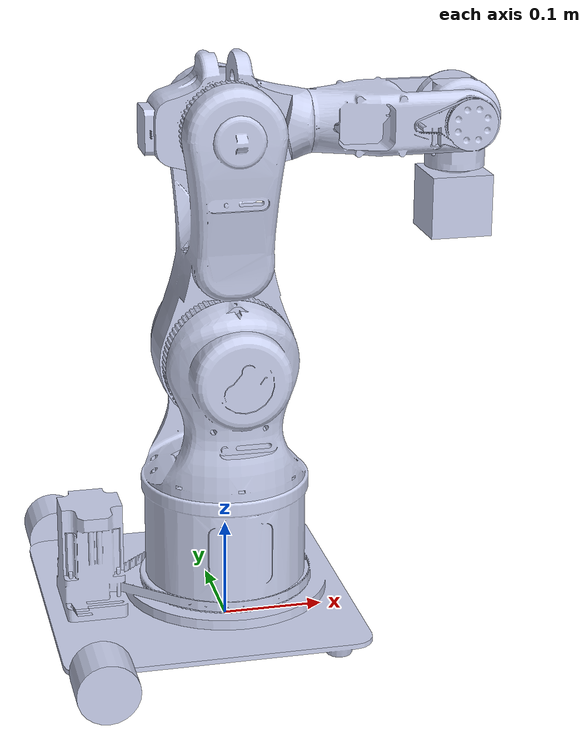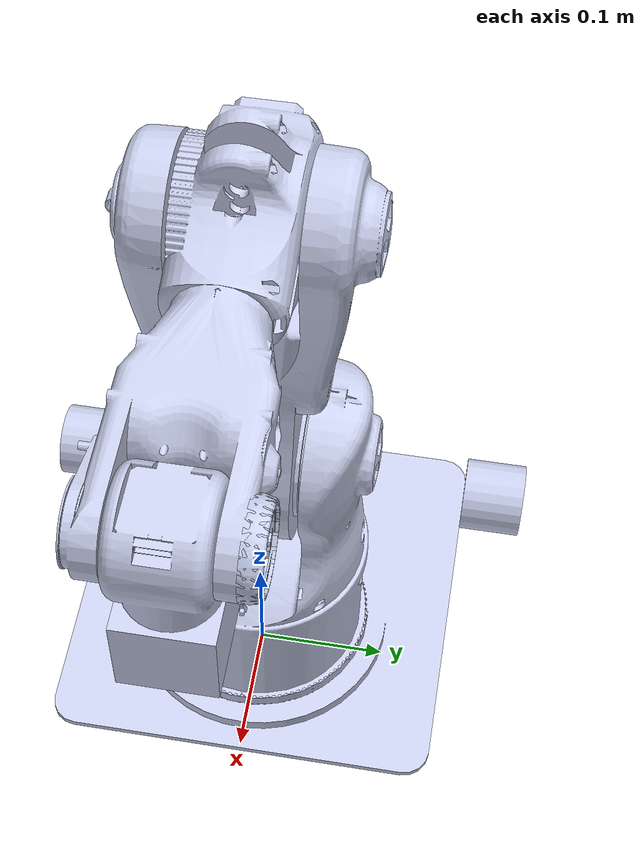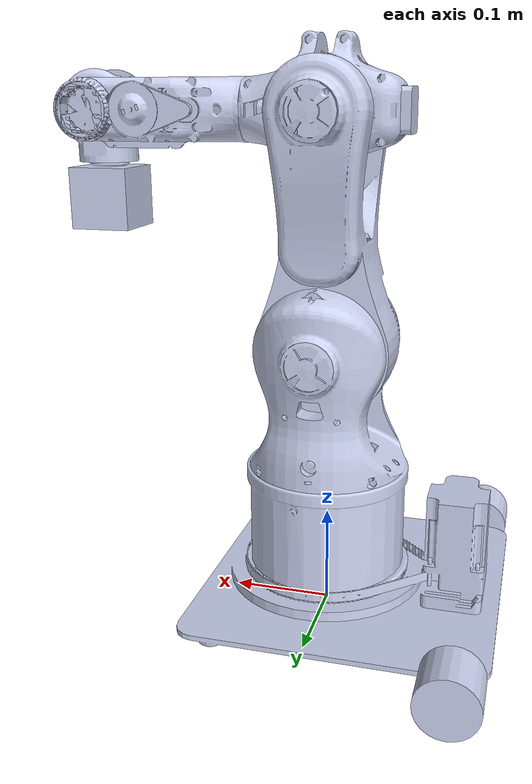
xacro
<?xml version="1.0"?>
<robot name="probot_anno" xmlns:xacro="http://ros.org/wiki/xacro">

  <xacro:property name="M_PI" value="3.1415926536"/>
  <link name="base_footprint"/>
  <joint name="joint_0" type="fixed">
    <origin xyz="0 0 0.05" rpy="0 0 0" />
    <parent link="base_footprint" />
    <child link="base_link" />
  </joint>

  <link name="base_link">
    <inertial>
      <origin xyz="-0.010934 0.23134 0.0051509" rpy="0 0 0" />
      <mass value="0.00001" />
      <inertia ixx="10" ixy="0.0" ixz="0.0" iyy="10" iyz="0.0" izz="10" />
    </inertial>
    <visual>
      <origin xyz="0.017266 0 0.01" rpy="0 0 0" />
      <geometry>
        <mesh filename="package://probot_description/meshes/base_link.STL" />
      </geometry>
      <material name="">
        <color rgba="0.79216 0.81961 0.93333 1" />
      </material>
    </visual>
    <collision>
      <origin xyz="0.017266 0 0.01" rpy="0 0 0" />
      <geometry>
        <mesh filename="package://probot_description/meshes/base_link.STL" />
      </geometry>
    </collision>
  </link>
  <!-- Differential Drive Base -->
  <!-- Right wheel link -->

  <link name="base_link_wheel_right">
    <inertial>
      <origin xyz="0 0 0" rpy="0 0 0" />
      <mass value="0.1" />
      <inertia ixx="0.01" ixy="0.0" ixz="0.0" iyy="0.01" iyz="0.0" izz="0.01" />
    </inertial>
    <collision>
      <origin xyz="0 0 0" rpy="0 0 0" />
      <geometry>
        <cylinder length="0.05" radius="0.03"/>
      </geometry>
    </collision>
    <visual>
      <origin xyz="0 0 0" rpy="0 0 0" />
      <geometry>
        <cylinder length="0.05" radius="0.03"/>
      </geometry>
      <material name="">
        <color rgba="0.79216 0.81961 0.93333 1" />
      </material>
    </visual>
  </link>

  <!-- Left wheel link -->
  <link name="base_link_wheel_left">
    <inertial>
      <origin xyz="0 0 0" rpy="0 0 0" />
      <mass value="0.1" />
      <inertia ixx="0.01" ixy="0.0" ixz="0.0" iyy="0.01" iyz="0.0" izz="0.01" />
    </inertial>
    <collision>
      <origin xyz="0 0 0" rpy="0 0 0" />
      <geometry>
        <cylinder length="0.05" radius="0.03"/>
      </geometry>
    </collision>
    <visual>
      <origin xyz="0 0 0" rpy="0 0 0" />
      <geometry>
        <cylinder length="0.05" radius="0.03"/>
      </geometry>
      <material name="">
        <color rgba="0.79216 0.81961 0.93333 1" />
      </material>
    </visual>
  </link>

  <!-- right wheel joint -->
  <joint name="base_r_wheel_joint" type="continuous">
    <parent link="base_link"/>
    <child link="base_link_wheel_right"/>
    <origin xyz="-0.15 -0.175 -0.02" rpy="1.5708 0 0"/>
    <axis xyz="0 1 0" />
  </joint>
  <!-- left wheel joint -->
  <joint name="base_l_wheel_joint" type="continuous">
    <parent link="base_link"/>
    <child link="base_link_wheel_left"/>
    <origin xyz="-0.15 0.175 -0.02" rpy="1.5708 0 0"/>
    <axis xyz="0 1 0" />
  </joint>

  <!-- 支撑轮 -->
    <link name="front_wheel">
        <visual>
            <geometry>
                <sphere radius="0.013" />
            </geometry>
            <origin xyz="0 0 0" rpy="0 0 0" />
            <material name="black">
                <color rgba="0.0 0.0 0.0 1.0" />
            </material>
        </visual>
    </link>

    <joint name="front_wheel2base_link" type="continuous">
        <parent link="base_link" />
        <child link="front_wheel" />
        <origin xyz="0.0925 0 -0.037" />
        <axis xyz="1 1 1" />
    </joint>

  <link name="link_1">
    <inertial>
      <origin xyz="-0.010934 0.23134 0.0051509" rpy="0 0 0" />
      <mass value="0.00001" />
      <inertia ixx="10" ixy="0.0" ixz="0.0" iyy="10" iyz="0.0" izz="10" />
    </inertial>
    <visual>
      <origin xyz="0 0 0" rpy="0 0 0" />
      <geometry>
        <mesh filename="package://probot_description/meshes/link_1.STL" />
      </geometry>
      <material name="">
        <color rgba="0.79216 0.81961 0.93333 1" />
      </material>
    </visual>
    <collision>
      <origin xyz="0 0 0" rpy="0 0 0" />
      <geometry>
        <mesh filename="package://probot_description/meshes/link_1.STL" />
      </geometry>
    </collision>
  </link>
  <joint name="joint_1" type="revolute">
    <origin xyz="0 0 0" rpy="1.5708 0 0" />
    <parent link="base_link" />
    <child link="link_1" />
    <axis xyz="0 1 0" />
    <limit lower="-3.1416" upper="3.1416" effort="100" velocity="3" />
  </joint>

  <link name="link_2">
    <inertial>
      <origin xyz="-0.010934 0.23134 0.0051509" rpy="0 0 0" />
      <mass value="0.00001" />
      <inertia ixx="10" ixy="0.0" ixz="0.0" iyy="10" iyz="0.0" izz="10" />
    </inertial>
    <visual>
      <origin xyz="0 0 0" rpy="0 0 0" />
      <geometry>
        <mesh filename="package://probot_description/meshes/link_2.STL" />
      </geometry>
      <material name="">
        <color rgba="0.79216 0.81961 0.93333 1" />
      </material>
    </visual>
    <collision>
      <origin xyz="0 0 0" rpy="0 0 0" />
      <geometry>
        <mesh filename="package://probot_description/meshes/link_2.STL" />
      </geometry>
    </collision>
  </link>
  <joint name="joint_2" type="revolute">
    <origin xyz="0 0.2305 0" rpy="0 0 0" />
    <parent link="link_1" />
    <child link="link_2" />
    <axis xyz="0 0 1" />
    <limit lower="-2.0071" upper="2.0071" effort="100" velocity="3" />
  </joint>

  <link name="link_3">
    <inertial>
      <origin xyz="-0.010934 0.23134 0.0051509" rpy="0 0 0" />
      <mass value="0.00001" />
      <inertia ixx="10" ixy="0.0" ixz="0.0" iyy="10" iyz="0.0" izz="10" />
    </inertial>
    <visual>
      <origin xyz="0 0 0" rpy="0 0 0" />
      <geometry>
        <mesh filename="package://probot_description/meshes/link_3.STL" />
      </geometry>
      <material name="">
        <color rgba="0.79216 0.81961 0.93333 1" />
      </material>
    </visual>
    <collision>
      <origin xyz="0 0 0" rpy="0 0 0" />
      <geometry>
        <mesh filename="package://probot_description/meshes/link_3.STL" />
      </geometry>
    </collision>
  </link>
  <joint name="joint_3" type="revolute">
    <origin xyz="0 0.225 0" rpy="0 0 0" />
    <parent link="link_2" />
    <child link="link_3" />
    <axis xyz="0 0 1" />
    <limit lower="-0.6981" upper="3.8397" effort="100" velocity="3" />
  </joint>

  <link name="link_4">
    <inertial>
      <origin xyz="-0.010934 0.23134 0.0051509" rpy="0 0 0" />
      <mass value="0.00001" />
      <inertia ixx="10" ixy="0.0" ixz="0.0" iyy="10" iyz="0.0" izz="10" />
    </inertial>
    <visual>
      <origin xyz="0 0 0" rpy="0 0 0" />
      <geometry>
        <mesh filename="package://probot_description/meshes/link_4.STL" />
      </geometry>
      <material name="">
        <color rgba="0.79216 0.81961 0.93333 1" />
      </material>
    </visual>
    <collision>
      <origin xyz="0 0 0" rpy="0 0 0" />
      <geometry>
        <mesh filename="package://probot_description/meshes/link_4.STL" />
      </geometry>
    </collision>
  </link>
  <joint name="joint_4" type="revolute">
    <origin xyz="0.021 0 0.002" rpy="0 0 0" />
    <parent link="link_3" />
    <child link="link_4" />
    <axis xyz="1 0 0" />
    <limit lower="-3.1416" upper="3.1416" effort="100" velocity="3" />
  </joint>

  <link name="link_5">
    <inertial>
      <origin xyz="-0.010934 0.23134 0.0051509" rpy="0 0 0" />
      <mass value="0.00001" />
      <inertia ixx="10" ixy="0.0" ixz="0.0" iyy="10" iyz="0.0" izz="10" />
    </inertial>
    <visual>
      <origin xyz="0 0 0" rpy="0 0 0" />
      <geometry>
        <mesh filename="package://probot_description/meshes/link_5.STL" />
      </geometry>
      <material name="">
        <color rgba="0.79216 0.81961 0.93333 1" />
      </material>
    </visual>
    <collision>
      <origin xyz="0 0 0" rpy="0 0 0" />
      <geometry>
        <mesh filename="package://probot_description/meshes/link_5.STL" />
      </geometry>
    </collision>
  </link>
  <joint name="joint_5" type="revolute">
    <origin xyz="0.20586 0 0" rpy="0 0 0" />
    <parent link="link_4" />
    <child link="link_5" />
    <axis xyz="0 0 1" />
    <limit lower="-0.7854" upper="3.9270" effort="100" velocity="3" />
  </joint>

  <link name="link_6">
    <inertial>
      <origin xyz="-0.010934 0.23134 0.0051509" rpy="0 0 0" />
      <mass value="0.00001" />
      <inertia ixx="10" ixy="0.0" ixz="0.0" iyy="10" iyz="0.0" izz="10" />
    </inertial>
    <visual>
      <origin xyz="0 0 0" rpy="0 0 0" />
      <geometry>
        <mesh filename="package://probot_description/meshes/link_6.STL" />
      </geometry>
      <material name="">
        <color rgba="0.79216 0.81961 0.93333 1" />
      </material>
    </visual>
    <collision>
      <origin xyz="0 0 0" rpy="0 0 0" />
      <geometry>
        <mesh filename="package://probot_description/meshes/link_6.STL" />
      </geometry>
    </collision>
  </link>
  <joint name="joint_6" type="revolute">
    <origin xyz="0 -0.042 0" rpy="0 0 0" />
    <parent link="link_5" />
    <child link="link_6" />
    <axis xyz="0 -1 0" />
    <limit lower="-3.1416" upper="3.1416" effort="100" velocity="3" />
  </joint>

  <link name="tool0"/>
  <joint name="joint_tool0" type="fixed">
    <origin xyz="0 -0.013 0" rpy="0 0 0" />
    <parent link="link_6" />
    <child link="tool0" />
  </joint>

  <!-- Transmissions for ROS Control -->
  <xacro:macro name="transmission_block" params="joint_name">
    <transmission name="tran1">
      <type>transmission_interface/SimpleTransmission</type>
      <joint name="${joint_name}">
        <hardwareInterface>hardware_interface/PositionJointInterface</hardwareInterface>
      </joint>
      <actuator name="motor1">
        <hardwareInterface>hardware_interface/PositionJointInterface</hardwareInterface>
        <mechanicalReduction>1</mechanicalReduction>
      </actuator>
    </transmission>
  </xacro:macro>

  <xacro:transmission_block joint_name="joint_1"/>
  <xacro:transmission_block joint_name="joint_2"/>
  <xacro:transmission_block joint_name="joint_3"/>
  <xacro:transmission_block joint_name="joint_4"/>
  <xacro:transmission_block joint_name="joint_5"/>
  <xacro:transmission_block joint_name="joint_6"/>

  <!-- ros_control plugin -->
  <gazebo>
    <plugin name="gazebo_ros_control" filename="libgazebo_ros_control.so">
      <robotNamespace>/probot_anno</robotNamespace>
      <robotSimType>gazebo_ros_control/DefaultRobotHWSim</robotSimType>
      <legacyModeNS>true</legacyModeNS>
    </plugin>
  </gazebo>

</robot>
